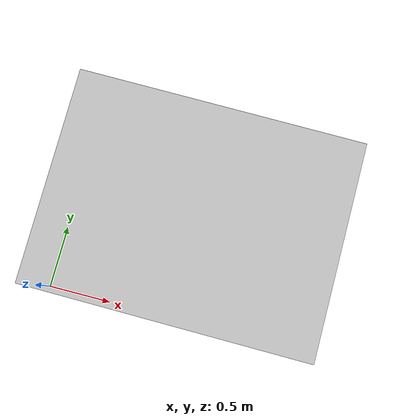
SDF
<?xml version='1.0' encoding='utf-8'?>
<sdf version='1.10'>
<model name='base_takeoff'>
  <pose>1 0.75 0.5  0 0 0</pose>
  <link name='box_link'>
    <collision name='box_collision'>
      <geometry>
        <box>
          <size>2 1.5 1</size>
        </box>
      </geometry>
      <surface>
        <friction>
          <ode/>
        </friction>
        <bounce/>
        <contact/>
      </surface>
    </collision>
    <visual name='visual'>
      <geometry>
        <box>
          <size>2 1.5 0.999</size>
        </box>
      </geometry>
      <material>
        <ambient>0.175 0.175 0.175  1.0</ambient> <!-- dark grey -->
        <diffuse>0.175 0.175 0.175  1.0</diffuse>
        <specular>1 1 1 1</specular>
      </material>
    </visual>
    <visual name='image'>
      <pose>0 0 0.5 0 0 0</pose>
        <geometry>
          <box>
            <size>2 1.5 0.001</size>
          </box>
        </geometry>
        <material>
        <diffuse>0.7 0.7 0.7 1</diffuse>
        <specular>1 1 1 1</specular>
        <pbr>
            <metal>
              <albedo_map>materials/textures/base_takeoff.png</albedo_map>   <!--Takeoff base image-->
              <metalness> 0 </metalness>
              <roughness>1</roughness>
            </metal>
		      </pbr>
      </material>
      </visual>
    <pose>0 0 0 0 0 0</pose>
    <enable_wind>false</enable_wind>
  </link>
  <static>true</static>
  <self_collide>false</self_collide>
</model>
</sdf>
